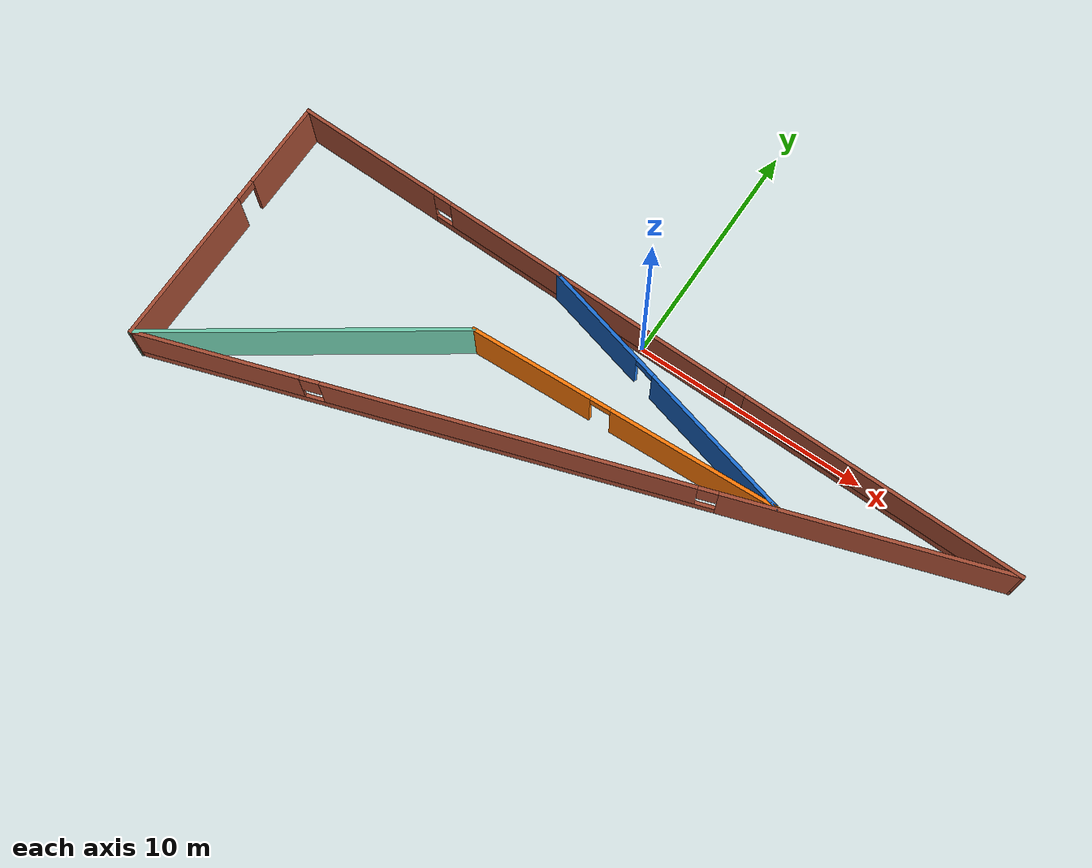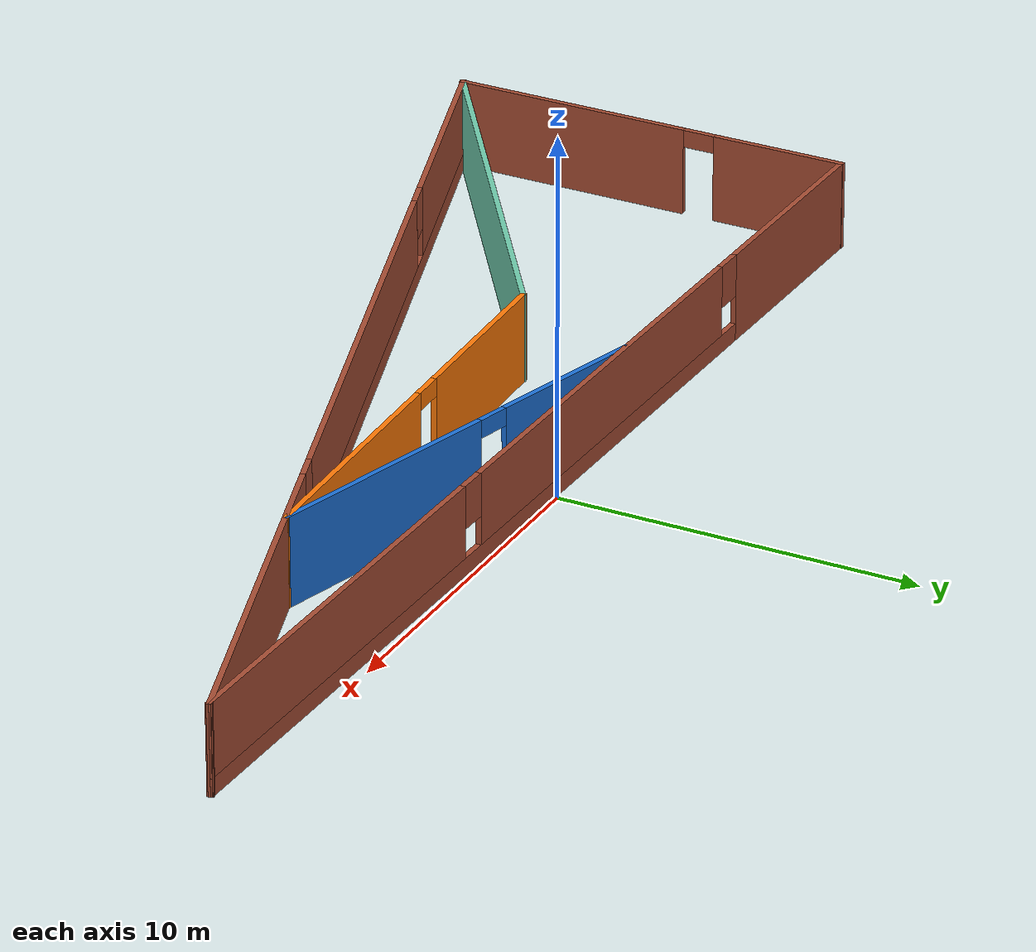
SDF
<?xml version='1.0'?>
<sdf version='1.7'>
  <model name='Building'>
    <pose>0.314033 -5.48966 0 0 -0 0</pose>
    <link name='Wall_0'>
      <pose>-16.489 0.014665 0 0 -0 1.57343</pose>
      <visual name='Wall_0_Visual_0'>
        <pose>-2.36202 0 1.25 0 -0 0</pose>
        <geometry>
          <box>
            <size>6.79601 0.15 2.5</size>
          </box>
        </geometry>
        <material>
          <script>
            <uri>file://media/materials/scripts/gazebo.material</uri>
            <name>Gazebo/Bricks</name>
          </script>
          <ambient>1 1 1 1</ambient>
        </material>
        <meta>
          <layer>0</layer>
        </meta>
      </visual>
      <collision name='Wall_0_Collision_0'>
        <geometry>
          <box>
            <size>6.79601 0.15 2.5</size>
          </box>
        </geometry>
        <pose>-2.36202 0 1.25 0 -0 0</pose>
      </collision>
      <visual name='Wall_0_Visual_1'>
        <pose>3.848 0 1.25 0 -0 0</pose>
        <geometry>
          <box>
            <size>3.82403 0.15 2.5</size>
          </box>
        </geometry>
        <material>
          <script>
            <uri>file://media/materials/scripts/gazebo.material</uri>
            <name>Gazebo/Bricks</name>
          </script>
          <ambient>1 1 1 1</ambient>
        </material>
        <meta>
          <layer>0</layer>
        </meta>
      </visual>
      <collision name='Wall_0_Collision_1'>
        <geometry>
          <box>
            <size>3.82403 0.15 2.5</size>
          </box>
        </geometry>
        <pose>3.848 0 1.25 0 -0 0</pose>
      </collision>
      <visual name='Wall_0_Visual_2'>
        <pose>1.48598 0 2.25 0 -0 0</pose>
        <geometry>
          <box>
            <size>0.9 0.15 0.5</size>
          </box>
        </geometry>
        <material>
          <script>
            <uri>file://media/materials/scripts/gazebo.material</uri>
            <name>Gazebo/Bricks</name>
          </script>
          <ambient>1 1 1 1</ambient>
        </material>
        <meta>
          <layer>0</layer>
        </meta>
      </visual>
      <collision name='Wall_0_Collision_2'>
        <geometry>
          <box>
            <size>0.9 0.15 0.5</size>
          </box>
        </geometry>
        <pose>1.48598 0 2.25 0 -0 0</pose>
      </collision>
    </link>
    <link name='Wall_1'>
      <pose>-0.009033 5.36466 0 0 -0 -0.0197</pose>
      <visual name='Wall_1_Visual_0'>
        <pose>-13.3962 0 1.25 0 -0 0</pose>
        <geometry>
          <box>
            <size>6.35403 0.15 2.5</size>
          </box>
        </geometry>
        <material>
          <script>
            <uri>file://media/materials/scripts/gazebo.material</uri>
            <name>Gazebo/Bricks</name>
          </script>
          <ambient>1 1 1 1</ambient>
        </material>
        <meta>
          <layer>0</layer>
        </meta>
      </visual>
      <collision name='Wall_1_Collision_0'>
        <geometry>
          <box>
            <size>6.35403 0.15 2.5</size>
          </box>
        </geometry>
        <pose>-13.3962 0 1.25 0 -0 0</pose>
      </collision>
      <visual name='Wall_1_Visual_1'>
        <pose>3.17701 0 0.25 0 -0 0</pose>
        <geometry>
          <box>
            <size>26.7924 0.15 0.5</size>
          </box>
        </geometry>
        <material>
          <script>
            <uri>file://media/materials/scripts/gazebo.material</uri>
            <name>Gazebo/Bricks</name>
          </script>
          <ambient>1 1 1 1</ambient>
        </material>
        <meta>
          <layer>0</layer>
        </meta>
      </visual>
      <collision name='Wall_1_Collision_1'>
        <geometry>
          <box>
            <size>26.7924 0.15 0.5</size>
          </box>
        </geometry>
        <pose>3.17701 0 0.25 0 -0 0</pose>
      </collision>
      <visual name='Wall_1_Visual_2'>
        <pose>-2.92581 0 1.5 0 -0 0</pose>
        <geometry>
          <box>
            <size>12.9867 0.15 2</size>
          </box>
        </geometry>
        <material>
          <script>
            <uri>file://media/materials/scripts/gazebo.material</uri>
            <name>Gazebo/Bricks</name>
          </script>
          <ambient>1 1 1 1</ambient>
        </material>
        <meta>
          <layer>0</layer>
        </meta>
      </visual>
      <collision name='Wall_1_Collision_2'>
        <geometry>
          <box>
            <size>12.9867 0.15 2</size>
          </box>
        </geometry>
        <pose>-2.92581 0 1.5 0 -0 0</pose>
      </collision>
      <visual name='Wall_1_Visual_3'>
        <pose>10.4704 0 1.5 0 -0 0</pose>
        <geometry>
          <box>
            <size>12.2057 0.15 2</size>
          </box>
        </geometry>
        <material>
          <script>
            <uri>file://media/materials/scripts/gazebo.material</uri>
            <name>Gazebo/Bricks</name>
          </script>
          <ambient>1 1 1 1</ambient>
        </material>
        <meta>
          <layer>0</layer>
        </meta>
      </visual>
      <collision name='Wall_1_Collision_3'>
        <geometry>
          <box>
            <size>12.2057 0.15 2</size>
          </box>
        </geometry>
        <pose>10.4704 0 1.5 0 -0 0</pose>
      </collision>
      <visual name='Wall_1_Visual_4'>
        <pose>-9.81917 0 1.9 0 -0 0</pose>
        <geometry>
          <box>
            <size>0.8 0.15 1.2</size>
          </box>
        </geometry>
        <material>
          <script>
            <uri>file://media/materials/scripts/gazebo.material</uri>
            <name>Gazebo/Bricks</name>
          </script>
          <ambient>1 1 1 1</ambient>
        </material>
        <meta>
          <layer>0</layer>
        </meta>
      </visual>
      <collision name='Wall_1_Collision_4'>
        <geometry>
          <box>
            <size>0.8 0.15 1.2</size>
          </box>
        </geometry>
        <pose>-9.81917 0 1.9 0 -0 0</pose>
      </collision>
      <visual name='Wall_1_Visual_5'>
        <pose>3.96754 0 1.9 0 -0 0</pose>
        <geometry>
          <box>
            <size>0.8 0.15 1.2</size>
          </box>
        </geometry>
        <material>
          <script>
            <uri>file://media/materials/scripts/gazebo.material</uri>
            <name>Gazebo/Bricks</name>
          </script>
          <ambient>1 1 1 1</ambient>
        </material>
        <meta>
          <layer>0</layer>
        </meta>
      </visual>
      <collision name='Wall_1_Collision_5'>
        <geometry>
          <box>
            <size>0.8 0.15 1.2</size>
          </box>
        </geometry>
        <pose>3.96754 0 1.9 0 -0 0</pose>
      </collision>
    </link>
    <link name='Wall_2'>
      <pose>0.000967 -0.315335 0 0 -0 -2.82696</pose>
      <visual name='Wall_2_Visual_0'>
        <pose>-11.6503 0 1.25 0 -0 0</pose>
        <geometry>
          <box>
            <size>11.5215 0.15 2.5</size>
          </box>
        </geometry>
        <material>
          <script>
            <uri>file://media/materials/scripts/gazebo.material</uri>
            <name>Gazebo/Bricks</name>
          </script>
          <ambient>1 1 1 1</ambient>
        </material>
        <meta>
          <layer>0</layer>
        </meta>
      </visual>
      <collision name='Wall_2_Collision_0'>
        <geometry>
          <box>
            <size>11.5215 0.15 2.5</size>
          </box>
        </geometry>
        <pose>-11.6503 0 1.25 0 -0 0</pose>
      </collision>
      <visual name='Wall_2_Visual_1'>
        <pose>5.76077 0 0.25 0 -0 0</pose>
        <geometry>
          <box>
            <size>23.3006 0.15 0.5</size>
          </box>
        </geometry>
        <material>
          <script>
            <uri>file://media/materials/scripts/gazebo.material</uri>
            <name>Gazebo/Bricks</name>
          </script>
          <ambient>1 1 1 1</ambient>
        </material>
        <meta>
          <layer>0</layer>
        </meta>
      </visual>
      <collision name='Wall_2_Collision_1'>
        <geometry>
          <box>
            <size>23.3006 0.15 0.5</size>
          </box>
        </geometry>
        <pose>5.76077 0 0.25 0 -0 0</pose>
      </collision>
      <visual name='Wall_2_Visual_2'>
        <pose>2.31914 0 1.5 0 -0 0</pose>
        <geometry>
          <box>
            <size>14.8173 0.15 2</size>
          </box>
        </geometry>
        <material>
          <script>
            <uri>file://media/materials/scripts/gazebo.material</uri>
            <name>Gazebo/Bricks</name>
          </script>
          <ambient>1 1 1 1</ambient>
        </material>
        <meta>
          <layer>0</layer>
        </meta>
      </visual>
      <collision name='Wall_2_Collision_2'>
        <geometry>
          <box>
            <size>14.8173 0.15 2</size>
          </box>
        </geometry>
        <pose>2.31914 0 1.5 0 -0 0</pose>
      </collision>
      <visual name='Wall_2_Visual_3'>
        <pose>13.9694 0 1.5 0 -0 0</pose>
        <geometry>
          <box>
            <size>6.88326 0.15 2</size>
          </box>
        </geometry>
        <material>
          <script>
            <uri>file://media/materials/scripts/gazebo.material</uri>
            <name>Gazebo/Bricks</name>
          </script>
          <ambient>1 1 1 1</ambient>
        </material>
        <meta>
          <layer>0</layer>
        </meta>
      </visual>
      <collision name='Wall_2_Collision_3'>
        <geometry>
          <box>
            <size>6.88326 0.15 2</size>
          </box>
        </geometry>
        <pose>13.9694 0 1.5 0 -0 0</pose>
      </collision>
      <visual name='Wall_2_Visual_4'>
        <pose>-5.48951 0 1.9 0 -0 0</pose>
        <geometry>
          <box>
            <size>0.8 0.15 1.2</size>
          </box>
        </geometry>
        <material>
          <script>
            <uri>file://media/materials/scripts/gazebo.material</uri>
            <name>Gazebo/Bricks</name>
          </script>
          <ambient>1 1 1 1</ambient>
        </material>
        <meta>
          <layer>0</layer>
        </meta>
      </visual>
      <collision name='Wall_2_Collision_4'>
        <geometry>
          <box>
            <size>0.8 0.15 1.2</size>
          </box>
        </geometry>
        <pose>-5.48951 0 1.9 0 -0 0</pose>
      </collision>
      <visual name='Wall_2_Visual_5'>
        <pose>10.1278 0 1.9 0 -0 0</pose>
        <geometry>
          <box>
            <size>0.8 0.15 1.2</size>
          </box>
        </geometry>
        <material>
          <script>
            <uri>file://media/materials/scripts/gazebo.material</uri>
            <name>Gazebo/Bricks</name>
          </script>
          <ambient>1 1 1 1</ambient>
        </material>
        <meta>
          <layer>0</layer>
        </meta>
      </visual>
      <collision name='Wall_2_Collision_5'>
        <geometry>
          <box>
            <size>0.8 0.15 1.2</size>
          </box>
        </geometry>
        <pose>10.1278 0 1.9 0 -0 0</pose>
      </collision>
    </link>
    <link name='Wall_3'>
      <collision name='Wall_3_Collision'>
        <geometry>
          <box>
            <size>13.2734 0.15 2.5</size>
          </box>
        </geometry>
        <pose>0 0 1.25 0 -0 0</pose>
      </collision>
      <visual name='Wall_3_Visual'>
        <pose>0 0 1.25 0 -0 0</pose>
        <geometry>
          <box>
            <size>13.2734 0.15 2.5</size>
          </box>
        </geometry>
        <material>
          <script>
            <uri>file://media/materials/scripts/gazebo.material</uri>
            <name>Gazebo/Grey</name>
          </script>
          <ambient>0.435294 0.796078 0.67451 1</ambient>
        </material>
        <meta>
          <layer>0</layer>
        </meta>
      </visual>
      <pose>-11.0648 -1.95606 0 0 -0 0.60171</pose>
    </link>
    <link name='Wall_4'>
      <pose>1.02457 1.99269 0 0 -0 0.035086</pose>
      <visual name='Wall_4_Visual_0'>
        <pose>-4.10049 0 1.25 0 -0 0</pose>
        <geometry>
          <box>
            <size>5.31733 0.15 2.5</size>
          </box>
        </geometry>
        <material>
          <script>
            <uri>file://media/materials/scripts/gazebo.material</uri>
            <name>Gazebo/Grey</name>
          </script>
          <ambient>0.996078 0.47451 0.0196078 1</ambient>
        </material>
        <meta>
          <layer>0</layer>
        </meta>
      </visual>
      <collision name='Wall_4_Collision_0'>
        <geometry>
          <box>
            <size>5.31733 0.15 2.5</size>
          </box>
        </geometry>
        <pose>-4.10049 0 1.25 0 -0 0</pose>
      </collision>
      <visual name='Wall_4_Visual_1'>
        <pose>3.10866 0 1.25 0 -0 0</pose>
        <geometry>
          <box>
            <size>7.30099 0.15 2.5</size>
          </box>
        </geometry>
        <material>
          <script>
            <uri>file://media/materials/scripts/gazebo.material</uri>
            <name>Gazebo/Grey</name>
          </script>
          <ambient>0.996078 0.47451 0.0196078 1</ambient>
        </material>
        <meta>
          <layer>0</layer>
        </meta>
      </visual>
      <collision name='Wall_4_Collision_1'>
        <geometry>
          <box>
            <size>7.30099 0.15 2.5</size>
          </box>
        </geometry>
        <pose>3.10866 0 1.25 0 -0 0</pose>
      </collision>
      <visual name='Wall_4_Visual_2'>
        <pose>-0.991829 0 2.25 0 -0 0</pose>
        <geometry>
          <box>
            <size>0.9 0.15 0.5</size>
          </box>
        </geometry>
        <material>
          <script>
            <uri>file://media/materials/scripts/gazebo.material</uri>
            <name>Gazebo/Grey</name>
          </script>
          <ambient>0.996078 0.47451 0.0196078 1</ambient>
        </material>
        <meta>
          <layer>0</layer>
        </meta>
      </visual>
      <collision name='Wall_4_Collision_2'>
        <geometry>
          <box>
            <size>0.9 0.15 0.5</size>
          </box>
        </geometry>
        <pose>-0.991829 0 2.25 0 -0 0</pose>
      </collision>
    </link>
    <link name='Wall_6'>
      <pose>1.74002 3.82537 0 0 -0 2.87979</pose>
      <visual name='Wall_6_Visual_0'>
        <pose>-2.76788 0 1.25 0 -0 0</pose>
        <geometry>
          <box>
            <size>6.96425 0.15 2.5</size>
          </box>
        </geometry>
        <material>
          <script>
            <uri>file://media/materials/scripts/gazebo.material</uri>
            <name>Gazebo/Grey</name>
          </script>
          <ambient>0.109804 0.443137 0.847059 1</ambient>
        </material>
        <meta>
          <layer>0</layer>
        </meta>
      </visual>
      <collision name='Wall_6_Collision_0'>
        <geometry>
          <box>
            <size>6.96425 0.15 2.5</size>
          </box>
        </geometry>
        <pose>-2.76788 0 1.25 0 -0 0</pose>
      </collision>
      <visual name='Wall_6_Visual_1'>
        <pose>3.93213 0 1.25 0 -0 0</pose>
        <geometry>
          <box>
            <size>4.63575 0.15 2.5</size>
          </box>
        </geometry>
        <material>
          <script>
            <uri>file://media/materials/scripts/gazebo.material</uri>
            <name>Gazebo/Grey</name>
          </script>
          <ambient>0.109804 0.443137 0.847059 1</ambient>
        </material>
        <meta>
          <layer>0</layer>
        </meta>
      </visual>
      <collision name='Wall_6_Collision_1'>
        <geometry>
          <box>
            <size>4.63575 0.15 2.5</size>
          </box>
        </geometry>
        <pose>3.93213 0 1.25 0 -0 0</pose>
      </collision>
      <visual name='Wall_6_Visual_2'>
        <pose>1.16425 0 2.25 0 -0 0</pose>
        <geometry>
          <box>
            <size>0.9 0.15 0.5</size>
          </box>
        </geometry>
        <material>
          <script>
            <uri>file://media/materials/scripts/gazebo.material</uri>
            <name>Gazebo/Grey</name>
          </script>
          <ambient>0.109804 0.443137 0.847059 1</ambient>
        </material>
        <meta>
          <layer>0</layer>
        </meta>
      </visual>
      <collision name='Wall_6_Collision_2'>
        <geometry>
          <box>
            <size>0.9 0.15 0.5</size>
          </box>
        </geometry>
        <pose>1.16425 0 2.25 0 -0 0</pose>
      </collision>
    </link>
    <static>1</static>
  </model>
</sdf>
